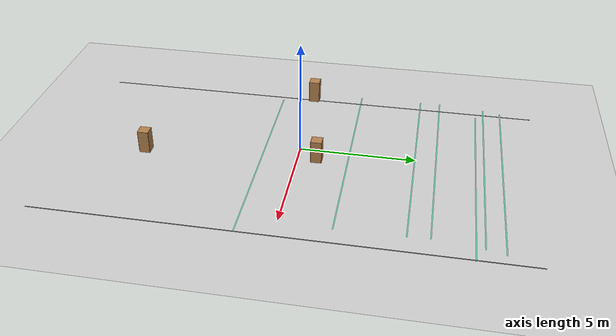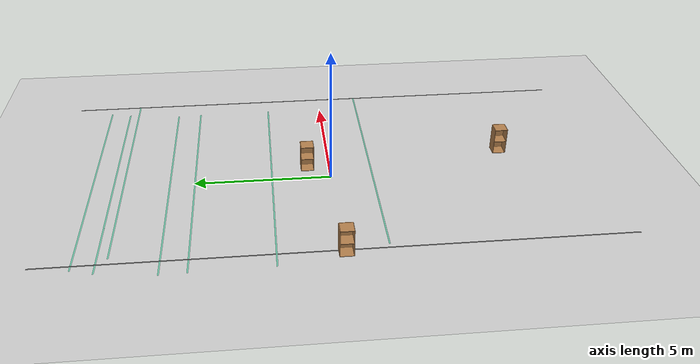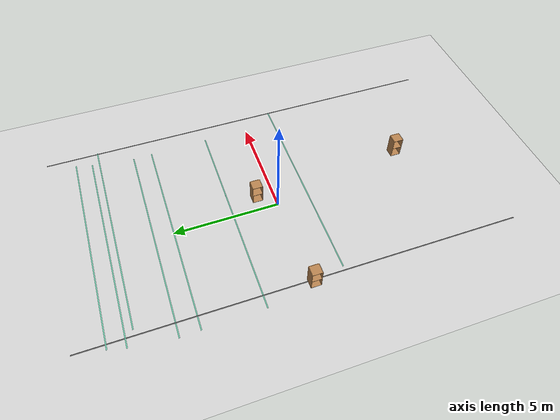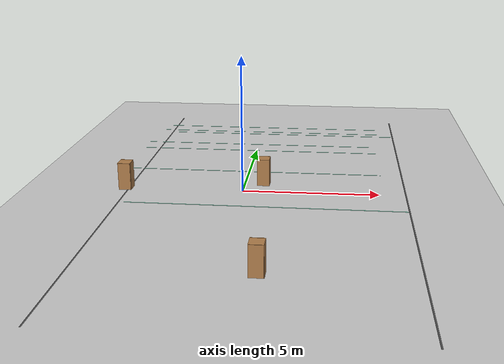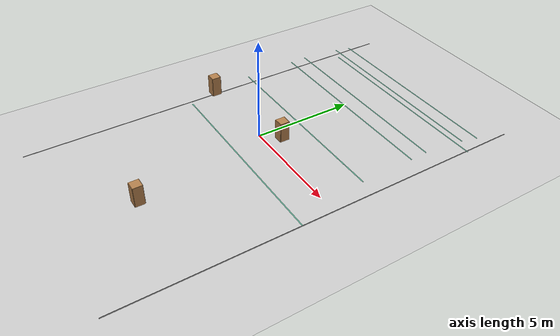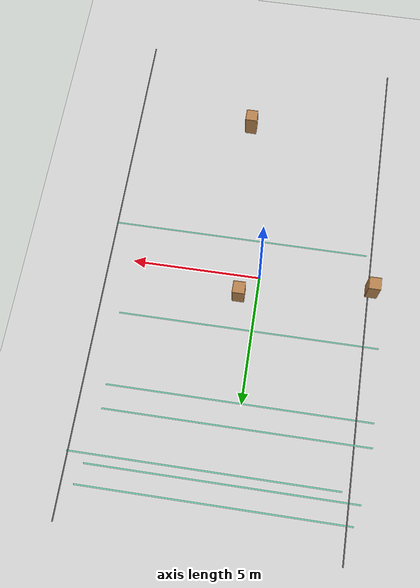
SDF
<sdf version="1.7">
 <world name="default">
  <model name="ground_plane">
   <static>1</static>
   <link name="link">
    <collision name="collision">
     <geometry><plane><normal>0 0 1</normal><size>100 100</size></plane></geometry>
     <surface>
      <contact><collide_bitmask>65535</collide_bitmask></contact>
      <friction><ode><mu>100</mu><mu2>50</mu2></ode></friction>
     </surface>
    </collision>
    <visual name="visual">
     <cast_shadows>0</cast_shadows>
     <geometry><plane><normal>0 0 1</normal><size>100 100</size></plane></geometry>
     <material>
      <script><uri>file://media/materials/scripts/gazebo.material</uri><name>Gazebo/Grey</name></script>
     </material>
    </visual>
   </link>
  </model>
  <gravity>0 0 -9.8</gravity>
  <magnetic_field>6e-06 2.3e-05 -4.2e-05</magnetic_field>
  <atmosphere type="adiabatic"/>
  <physics type="ode">
   <max_step_size>0.001</max_step_size>
   <real_time_factor>1</real_time_factor>
   <real_time_update_rate>1000</real_time_update_rate>
  </physics>
  <scene><ambient>0.4 0.4 0.4 1</ambient><background>0.7 0.7 0.7 1</background><shadows>1</shadows></scene>
  <spherical_coordinates>
   <surface_model>EARTH_WGS84</surface_model>
   <latitude_deg>0</latitude_deg>
   <longitude_deg>0</longitude_deg>
   <elevation>0</elevation>
   <heading_deg>0</heading_deg>
  </spherical_coordinates>
  <model name="cabinet">
   <static>1</static>
   <link name="cabinet_bottom_plate">
    <inertial>
     <pose>0 0 -1 0 -0 0</pose>
     <inertia><ixx>2.05</ixx><ixy>0</ixy><ixz>0</ixz><iyy>2.05</iyy><iyz>0</iyz><izz>2.05</izz></inertia>
     <mass>25</mass>
    </inertial>
    <collision name="cabinet_bottom_plate_geom">
     <pose>0 0 0.01 0 -0 0</pose>
     <geometry><box><size>0.45 0.45 0.02</size></box></geometry>
    </collision>
    <visual name="cabinet_bottom_plate_geom_visual">
     <pose>0 0 0.01 0 -0 0</pose>
     <geometry><box><size>0.45 0.45 0.02</size></box></geometry>
     <material>
      <script><uri>file://media/materials/scripts/gazebo.material</uri><name>Gazebo/Wood</name></script>
     </material>
    </visual>
    <collision name="cabinet_bottom_plate_geom_cabinet_back_plate">
     <pose>0.235 0 0.51 0 -0 0</pose>
     <geometry><box><size>0.02 0.45 1.02</size></box></geometry>
    </collision>
    <visual name="cabinet_bottom_plate_geom_cabinet_back_plate_visual">
     <pose>0.235 0 0.51 0 -0 0</pose>
     <geometry><box><size>0.02 0.45 1.02</size></box></geometry>
     <material>
      <script><uri>file://media/materials/scripts/gazebo.material</uri><name>Gazebo/Wood</name></script>
     </material>
    </visual>
    <collision name="cabinet_bottom_plate_geom_cabinet_left_plate">
     <pose>0 0.235 0.51 0 -0 0</pose>
     <geometry><box><size>0.45 0.02 1.02</size></box></geometry>
    </collision>
    <visual name="cabinet_bottom_plate_geom_cabinet_left_plate_visual">
     <pose>0 0.235 0.51 0 -0 0</pose>
     <geometry><box><size>0.45 0.02 1.02</size></box></geometry>
     <material>
      <script><uri>file://media/materials/scripts/gazebo.material</uri><name>Gazebo/Wood</name></script>
     </material>
    </visual>
    <collision name="cabinet_bottom_plate_geom_cabinet_middle_plate">
     <pose>0 0 0.51 0 -0 0</pose>
     <geometry><box><size>0.45 0.45 0.02</size></box></geometry>
    </collision>
    <visual name="cabinet_bottom_plate_geom_cabinet_middle_plate_visual">
     <pose>0 0 0.51 0 -0 0</pose>
     <geometry><box><size>0.45 0.45 0.02</size></box></geometry>
     <material>
      <script><uri>file://media/materials/scripts/gazebo.material</uri><name>Gazebo/Wood</name></script>
     </material>
    </visual>
    <collision name="cabinet_bottom_plate_geom_cabinet_right_plate">
     <pose>0 -0.235 0.51 0 -0 0</pose>
     <geometry><box><size>0.45 0.02 1.02</size></box></geometry>
    </collision>
    <visual name="cabinet_bottom_plate_geom_cabinet_right_plate_visual">
     <pose>0 -0.235 0.51 0 -0 0</pose>
     <geometry><box><size>0.45 0.02 1.02</size></box></geometry>
     <material>
      <script><uri>file://media/materials/scripts/gazebo.material</uri><name>Gazebo/Wood</name></script>
     </material>
    </visual>
    <collision name="cabinet_bottom_plate_geom_cabinet_top_plate">
     <pose>0 0 1.01 0 -0 0</pose>
     <geometry><box><size>0.45 0.45 0.02</size></box></geometry>
    </collision>
    <visual name="cabinet_bottom_plate_geom_cabinet_top_plate_visual">
     <pose>0 0 1.01 0 -0 0</pose>
     <geometry><box><size>0.45 0.45 0.02</size></box></geometry>
     <material>
      <script><uri>file://media/materials/scripts/gazebo.material</uri><name>Gazebo/Wood</name></script>
     </material>
    </visual>
   </link>
   <pose>0.695025 0.822603 0 0 -0 0</pose>
  </model>
  <model name="cabinet_clone">
   <static>1</static>
   <link name="cabinet_bottom_plate">
    <inertial>
     <pose>0 0 -1 0 -0 0</pose>
     <inertia><ixx>2.05</ixx><ixy>0</ixy><ixz>0</ixz><iyy>2.05</iyy><iyz>0</iyz><izz>2.05</izz></inertia>
     <mass>25</mass>
    </inertial>
    <collision name="cabinet_bottom_plate_geom">
     <pose>0 0 0.01 0 -0 0</pose>
     <geometry><box><size>0.45 0.45 0.02</size></box></geometry>
    </collision>
    <visual name="cabinet_bottom_plate_geom_visual">
     <pose>0 0 0.01 0 -0 0</pose>
     <geometry><box><size>0.45 0.45 0.02</size></box></geometry>
     <material>
      <script><uri>file://media/materials/scripts/gazebo.material</uri><name>Gazebo/Wood</name></script>
     </material>
    </visual>
    <collision name="cabinet_bottom_plate_geom_cabinet_back_plate">
     <pose>0.235 0 0.51 0 -0 0</pose>
     <geometry><box><size>0.02 0.45 1.02</size></box></geometry>
    </collision>
    <visual name="cabinet_bottom_plate_geom_cabinet_back_plate_visual">
     <pose>0.235 0 0.51 0 -0 0</pose>
     <geometry><box><size>0.02 0.45 1.02</size></box></geometry>
     <material>
      <script><uri>file://media/materials/scripts/gazebo.material</uri><name>Gazebo/Wood</name></script>
     </material>
    </visual>
    <collision name="cabinet_bottom_plate_geom_cabinet_left_plate">
     <pose>0 0.235 0.51 0 -0 0</pose>
     <geometry><box><size>0.45 0.02 1.02</size></box></geometry>
    </collision>
    <visual name="cabinet_bottom_plate_geom_cabinet_left_plate_visual">
     <pose>0 0.235 0.51 0 -0 0</pose>
     <geometry><box><size>0.45 0.02 1.02</size></box></geometry>
     <material>
      <script><uri>file://media/materials/scripts/gazebo.material</uri><name>Gazebo/Wood</name></script>
     </material>
    </visual>
    <collision name="cabinet_bottom_plate_geom_cabinet_middle_plate">
     <pose>0 0 0.51 0 -0 0</pose>
     <geometry><box><size>0.45 0.45 0.02</size></box></geometry>
    </collision>
    <visual name="cabinet_bottom_plate_geom_cabinet_middle_plate_visual">
     <pose>0 0 0.51 0 -0 0</pose>
     <geometry><box><size>0.45 0.45 0.02</size></box></geometry>
     <material>
      <script><uri>file://media/materials/scripts/gazebo.material</uri><name>Gazebo/Wood</name></script>
     </material>
    </visual>
    <collision name="cabinet_bottom_plate_geom_cabinet_right_plate">
     <pose>0 -0.235 0.51 0 -0 0</pose>
     <geometry><box><size>0.45 0.02 1.02</size></box></geometry>
    </collision>
    <visual name="cabinet_bottom_plate_geom_cabinet_right_plate_visual">
     <pose>0 -0.235 0.51 0 -0 0</pose>
     <geometry><box><size>0.45 0.02 1.02</size></box></geometry>
     <material>
      <script><uri>file://media/materials/scripts/gazebo.material</uri><name>Gazebo/Wood</name></script>
     </material>
    </visual>
    <collision name="cabinet_bottom_plate_geom_cabinet_top_plate">
     <pose>0 0 1.01 0 -0 0</pose>
     <geometry><box><size>0.45 0.45 0.02</size></box></geometry>
    </collision>
    <visual name="cabinet_bottom_plate_geom_cabinet_top_plate_visual">
     <pose>0 0 1.01 0 -0 0</pose>
     <geometry><box><size>0.45 0.45 0.02</size></box></geometry>
     <material>
      <script><uri>file://media/materials/scripts/gazebo.material</uri><name>Gazebo/Wood</name></script>
     </material>
    </visual>
   </link>
   <pose>-4.36279 -0.077703 0 0 -0 0</pose>
  </model>
  <model name="cabinet_clone_0">
   <static>1</static>
   <link name="cabinet_bottom_plate">
    <inertial>
     <pose>0 0 -1 0 -0 0</pose>
     <inertia><ixx>2.05</ixx><ixy>0</ixy><ixz>0</ixz><iyy>2.05</iyy><iyz>0</iyz><izz>2.05</izz></inertia>
     <mass>25</mass>
    </inertial>
    <collision name="cabinet_bottom_plate_geom">
     <pose>0 0 0.01 0 -0 0</pose>
     <geometry><box><size>0.45 0.45 0.02</size></box></geometry>
    </collision>
    <visual name="cabinet_bottom_plate_geom_visual">
     <pose>0 0 0.01 0 -0 0</pose>
     <geometry><box><size>0.45 0.45 0.02</size></box></geometry>
     <material>
      <script><uri>file://media/materials/scripts/gazebo.material</uri><name>Gazebo/Wood</name></script>
     </material>
    </visual>
    <collision name="cabinet_bottom_plate_geom_cabinet_back_plate">
     <pose>0.235 0 0.51 0 -0 0</pose>
     <geometry><box><size>0.02 0.45 1.02</size></box></geometry>
    </collision>
    <visual name="cabinet_bottom_plate_geom_cabinet_back_plate_visual">
     <pose>0.235 0 0.51 0 -0 0</pose>
     <geometry><box><size>0.02 0.45 1.02</size></box></geometry>
     <material>
      <script><uri>file://media/materials/scripts/gazebo.material</uri><name>Gazebo/Wood</name></script>
     </material>
    </visual>
    <collision name="cabinet_bottom_plate_geom_cabinet_left_plate">
     <pose>0 0.235 0.51 0 -0 0</pose>
     <geometry><box><size>0.45 0.02 1.02</size></box></geometry>
    </collision>
    <visual name="cabinet_bottom_plate_geom_cabinet_left_plate_visual">
     <pose>0 0.235 0.51 0 -0 0</pose>
     <geometry><box><size>0.45 0.02 1.02</size></box></geometry>
     <material>
      <script><uri>file://media/materials/scripts/gazebo.material</uri><name>Gazebo/Wood</name></script>
     </material>
    </visual>
    <collision name="cabinet_bottom_plate_geom_cabinet_middle_plate">
     <pose>0 0 0.51 0 -0 0</pose>
     <geometry><box><size>0.45 0.45 0.02</size></box></geometry>
    </collision>
    <visual name="cabinet_bottom_plate_geom_cabinet_middle_plate_visual">
     <pose>0 0 0.51 0 -0 0</pose>
     <geometry><box><size>0.45 0.45 0.02</size></box></geometry>
     <material>
      <script><uri>file://media/materials/scripts/gazebo.material</uri><name>Gazebo/Wood</name></script>
     </material>
    </visual>
    <collision name="cabinet_bottom_plate_geom_cabinet_right_plate">
     <pose>0 -0.235 0.51 0 -0 0</pose>
     <geometry><box><size>0.45 0.02 1.02</size></box></geometry>
    </collision>
    <visual name="cabinet_bottom_plate_geom_cabinet_right_plate_visual">
     <pose>0 -0.235 0.51 0 -0 0</pose>
     <geometry><box><size>0.45 0.02 1.02</size></box></geometry>
     <material>
      <script><uri>file://media/materials/scripts/gazebo.material</uri><name>Gazebo/Wood</name></script>
     </material>
    </visual>
    <collision name="cabinet_bottom_plate_geom_cabinet_top_plate">
     <pose>0 0 1.01 0 -0 0</pose>
     <geometry><box><size>0.45 0.45 0.02</size></box></geometry>
    </collision>
    <visual name="cabinet_bottom_plate_geom_cabinet_top_plate_visual">
     <pose>0 0 1.01 0 -0 0</pose>
     <geometry><box><size>0.45 0.45 0.02</size></box></geometry>
     <material>
      <script><uri>file://media/materials/scripts/gazebo.material</uri><name>Gazebo/Wood</name></script>
     </material>
    </visual>
   </link>
   <pose>1.24227 -6.62344 0 0 -0 0</pose>
  </model>
  <light name="sun" type="directional">
   <pose>-0.955999 -0.078041 10 0 -0 0</pose>
   <diffuse>0.8 0.8 0.8 1</diffuse>
   <specular>0.2 0.2 0.2 1</specular>
   <attenuation>
    <range>1000</range>
    <constant>0.9</constant>
    <linear>0.01</linear>
    <quadratic>0.001</quadratic>
   </attenuation>
   <direction>-0.5 0.1 -0.9</direction>
   <spot><inner_angle>0</inner_angle><outer_angle>0</outer_angle><falloff>0</falloff></spot>
  </light>
  <model name="line_1">
   <pose>1.21234 7.53579 0 0 -0 0</pose>
   <link name="Wall_0">
    <collision name="Wall_0_Collision">
     <geometry><box><size>10 0.05 5e-05</size></box></geometry>
     <pose>0 0 0.0025 0 -0 0</pose>
    </collision>
    <visual name="Wall_0_Visual">
     <pose>0 0 0.0025 0 -0 0</pose>
     <geometry><box><size>10 0.05 5e-05</size></box></geometry>
     <material>
      <script><uri>file://media/materials/scripts/gazebo.material</uri><name>Gazebo/Grey</name></script>
      <ambient>0.435294 0.796078 0.67451 1</ambient>
     </material>
     <meta><layer>0</layer></meta>
    </visual>
    <pose>-0.194987 -0 0 0 -0 3.14159</pose>
   </link>
   <static>1</static>
  </model>
  <model name="line_1_clone">
   <pose>0.705992 8.65281 0 0 -0 0</pose>
   <link name="Wall_0">
    <collision name="Wall_0_Collision">
     <geometry><box><size>10 0.05 5e-05</size></box></geometry>
     <pose>0 0 0.0025 0 -0 0</pose>
    </collision>
    <visual name="Wall_0_Visual">
     <pose>0 0 0.0025 0 -0 0</pose>
     <geometry><box><size>10 0.05 5e-05</size></box></geometry>
     <material>
      <script><uri>file://media/materials/scripts/gazebo.material</uri><name>Gazebo/Grey</name></script>
      <ambient>0.435294 0.796078 0.67451 1</ambient>
     </material>
     <meta><layer>0</layer></meta>
    </visual>
    <pose>-0.194987 -0 0 0 -0 3.14159</pose>
   </link>
   <static>1</static>
  </model>
  <model name="line_1_clone_0">
   <pose>0.51131 7.88868 0 0 -0 0</pose>
   <link name="Wall_0">
    <collision name="Wall_0_Collision">
     <geometry><box><size>10 0.05 5e-05</size></box></geometry>
     <pose>0 0 0.0025 0 -0 0</pose>
    </collision>
    <visual name="Wall_0_Visual">
     <pose>0 0 0.0025 0 -0 0</pose>
     <geometry><box><size>10 0.05 5e-05</size></box></geometry>
     <material>
      <script><uri>file://media/materials/scripts/gazebo.material</uri><name>Gazebo/Grey</name></script>
      <ambient>0.435294 0.796078 0.67451 1</ambient>
     </material>
     <meta><layer>0</layer></meta>
    </visual>
    <pose>-0.194987 -0 0 0 -0 3.14159</pose>
   </link>
   <static>1</static>
  </model>
  <model name="line_1_clone_1">
   <pose>0.262464 5.86977 0 0 -0 0</pose>
   <link name="Wall_0">
    <collision name="Wall_0_Collision">
     <geometry><box><size>10 0.05 5e-05</size></box></geometry>
     <pose>0 0 0.0025 0 -0 0</pose>
    </collision>
    <visual name="Wall_0_Visual">
     <pose>0 0 0.0025 0 -0 0</pose>
     <geometry><box><size>10 0.05 5e-05</size></box></geometry>
     <material>
      <script><uri>file://media/materials/scripts/gazebo.material</uri><name>Gazebo/Grey</name></script>
      <ambient>0.435294 0.796078 0.67451 1</ambient>
     </material>
     <meta><layer>0</layer></meta>
    </visual>
    <pose>-0.194987 -0 0 0 -0 3.14159</pose>
   </link>
   <static>1</static>
  </model>
  <model name="line_1_clone_2">
   <pose>0.295541 4.96805 0 0 -0 0</pose>
   <link name="Wall_0">
    <collision name="Wall_0_Collision">
     <geometry><box><size>10 0.05 5e-05</size></box></geometry>
     <pose>0 0 0.0025 0 -0 0</pose>
    </collision>
    <visual name="Wall_0_Visual">
     <pose>0 0 0.0025 0 -0 0</pose>
     <geometry><box><size>10 0.05 5e-05</size></box></geometry>
     <material>
      <script><uri>file://media/materials/scripts/gazebo.material</uri><name>Gazebo/Grey</name></script>
      <ambient>0.435294 0.796078 0.67451 1</ambient>
     </material>
     <meta><layer>0</layer></meta>
    </visual>
    <pose>-0.194987 -0 0 0 -0 3.14159</pose>
   </link>
   <static>1</static>
  </model>
  <model name="line_1_clone_3">
   <pose>0.344803 2.16163 0 0 -0 0</pose>
   <link name="Wall_0">
    <collision name="Wall_0_Collision">
     <geometry><box><size>10 0.05 5e-05</size></box></geometry>
     <pose>0 0 0.0025 0 -0 0</pose>
    </collision>
    <visual name="Wall_0_Visual">
     <pose>0 0 0.0025 0 -0 0</pose>
     <geometry><box><size>10 0.05 5e-05</size></box></geometry>
     <material>
      <script><uri>file://media/materials/scripts/gazebo.material</uri><name>Gazebo/Grey</name></script>
      <ambient>0.435294 0.796078 0.67451 1</ambient>
     </material>
     <meta><layer>0</layer></meta>
    </visual>
    <pose>-0.194987 -0 0 0 -0 3.14159</pose>
   </link>
   <static>1</static>
  </model>
  <model name="line_1_clone_4">
   <pose>1.13445 -1.53998 0 0 -0 0</pose>
   <link name="Wall_0">
    <collision name="Wall_0_Collision">
     <geometry><box><size>10 0.05 5e-05</size></box></geometry>
     <pose>0 0 0.0025 0 -0 0</pose>
    </collision>
    <visual name="Wall_0_Visual">
     <pose>0 0 0.0025 0 -0 0</pose>
     <geometry><box><size>10 0.05 5e-05</size></box></geometry>
     <material>
      <script><uri>file://media/materials/scripts/gazebo.material</uri><name>Gazebo/Grey</name></script>
      <ambient>0.435294 0.796078 0.67451 1</ambient>
     </material>
     <meta><layer>0</layer></meta>
    </visual>
    <pose>-0.194987 -0 0 0 -0 3.14159</pose>
   </link>
   <static>1</static>
  </model>
  <model name="line_track">
   <pose>-0.88612 0.245258 0 0 -0 0</pose>
   <link name="Wall_14">
    <collision name="Wall_14_Collision">
     <geometry><box><size>20 0.05 5e-05</size></box></geometry>
     <pose>0 0 0.0025 0 -0 0</pose>
    </collision>
    <visual name="Wall_14_Visual">
     <pose>0 0 0.0025 0 -0 0</pose>
     <geometry><box><size>20 0.05 5e-05</size></box></geometry>
     <material>
      <script><uri>file://media/materials/scripts/gazebo.material</uri><name>Gazebo/DarkGrey</name></script>
      <ambient>0.996078 0.47451 0.0196078 1</ambient>
     </material>
     <meta><layer>0</layer></meta>
    </visual>
    <pose>-3.36432 -0.227192 0 0 -0 -1.5708</pose>
   </link>
   <static>1</static>
  </model>
  <model name="line_track_clone">
   <pose>9.3227 0.231298 0 0 -0 0</pose>
   <link name="Wall_14">
    <collision name="Wall_14_Collision">
     <geometry><box><size>20 0.05 5e-05</size></box></geometry>
     <pose>0 0 0.0025 0 -0 0</pose>
    </collision>
    <visual name="Wall_14_Visual">
     <pose>0 0 0.0025 0 -0 0</pose>
     <geometry><box><size>20 0.05 5e-05</size></box></geometry>
     <material>
      <script><uri>file://media/materials/scripts/gazebo.material</uri><name>Gazebo/DarkGrey</name></script>
      <ambient>0.996078 0.47451 0.0196078 1</ambient>
     </material>
     <meta><layer>0</layer></meta>
    </visual>
    <pose>-3.36432 -0.227192 0 0 -0 -1.5708</pose>
   </link>
   <static>1</static>
  </model>
 </world>
</sdf>
